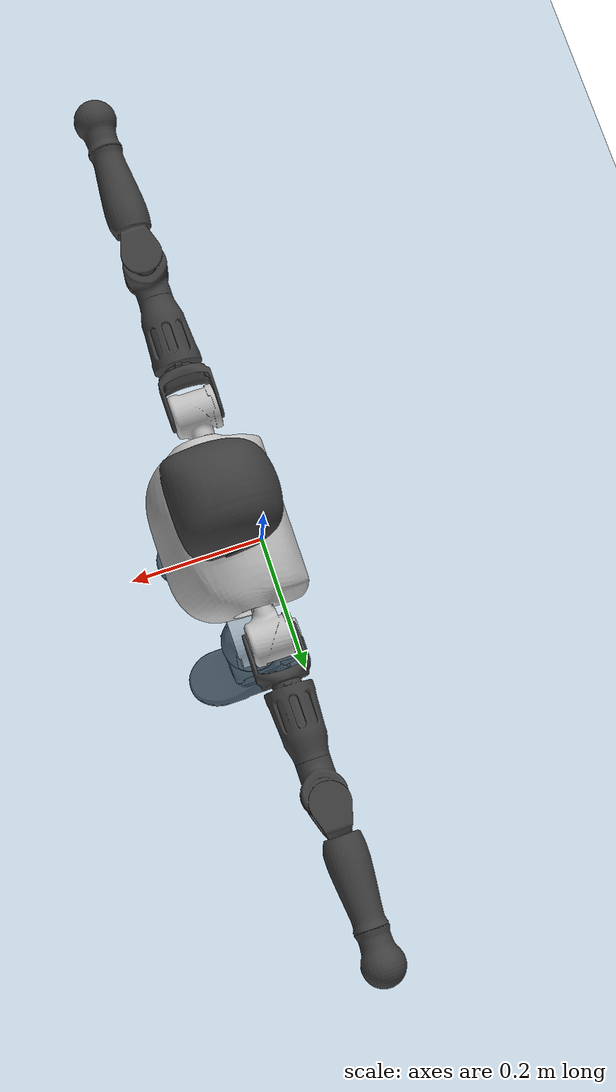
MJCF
<mujoco model="T1">
  <compiler angle="radian" assetdir="assets" balanceinertia="true" inertiafromgeom="false"/>

  <option timestep="0.005" density="1.2" viscosity="2e-05"/>

  <size nkey="1"/>

  <visual>
    <quality shadowsize="8192"/>
    <map shadowclip="0.5"/>
  </visual>

  <default>
    <default class="/">
      <joint armature="0.01" damping="0.01" frictionloss="0.1"/>
      <geom contype="0" conaffinity="0" group="1" solref="-1000 -80"/>
      <site size="0.01 0.005 0.005" group="5"/>
      <general forcelimited="true" biastype="affine" gainprm="25" biasprm="0 -25 -0.6"/>
      <default class="t1">
        <geom rgba="0.25 0.25 0.25 1"/>
        <default class="visual">
          <geom type="mesh" group="2"/>
        </default>
        <default class="collision">
          <geom group="3"/>
        </default>
        <default class="foot">
          <geom size="0.1115 0.05 0.015" type="box" condim="6" group="4" priority="1" solimp="0.015 1 0.015"/>
        </default>
        <default class="reward_collision_sphere">
          <geom group="5" rgba="1 0 0 1"/>
        </default>
      </default>
    </default>
  </default>

  <asset>
    <texture type="skybox" colorspace="auto" name="//unnamed_texture_0" builtin="gradient" rgb1="0.95 0.95 0.95" rgb2="0.95 0.95 0.95" width="100" height="600"/>
    <texture type="2d" colorspace="auto" name="texplane" builtin="checker" rgb1="0.345 0.575 0.748" rgb2="0.345 0.575 0.748" markrgb="1 1 1" width="512" height="512"/>
    <material name="MatPlane" class="/" texture="texplane" texuniform="true" texrepeat="2 2" specular="0.9"/>
    <mesh name="Trunk" class="/" file="Trunk.stl"/>
    <mesh name="H1" class="/" file="H1.stl"/>
    <mesh name="H2" class="/" file="H2.stl"/>
    <mesh name="AL1" class="/" file="AL1.stl"/>
    <mesh name="AL2" class="/" file="AL2.stl"/>
    <mesh name="AL3" class="/" file="AL3.stl"/>
    <mesh name="left_hand_link" class="/" file="left_hand_link.stl"/>
    <mesh name="AR1" class="/" file="AR1.stl"/>
    <mesh name="AR2" class="/" file="AR2.stl"/>
    <mesh name="AR3" class="/" file="AR3.stl"/>
    <mesh name="right_hand_link" class="/" file="right_hand_link.stl"/>
    <mesh name="Waist" class="/" file="Waist.stl"/>
    <mesh name="Hip_Pitch_Left" class="/" file="Hip_Pitch_Left.stl"/>
    <mesh name="Hip_Roll_Left" class="/" file="Hip_Roll_Left.stl"/>
    <mesh name="Hip_Yaw_Left" class="/" file="Hip_Yaw_Left.stl"/>
    <mesh name="Shank_Left" class="/" file="Shank_Left.stl"/>
    <mesh name="Ankle_Cross_Left" class="/" file="Ankle_Cross_Left.stl"/>
    <mesh name="left_foot_link" class="/" file="left_foot_link.stl"/>
    <mesh name="Hip_Pitch_Right" class="/" file="Hip_Pitch_Right.stl"/>
    <mesh name="Hip_Roll_Right" class="/" file="Hip_Roll_Right.stl"/>
    <mesh name="Hip_Yaw_Right" class="/" file="Hip_Yaw_Right.stl"/>
    <mesh name="Shank_Right" class="/" file="Shank_Right.stl"/>
    <mesh name="Ankle_Cross_Right" class="/" file="Ankle_Cross_Right.stl"/>
    <mesh name="right_foot_link" class="/" file="right_foot_link.stl"/>
  </asset>

  <worldbody>
    <geom name="floor" class="/" size="100 100 0.125" type="plane" group="0" material="MatPlane"/>
    <light name="toplight_shadow" class="/" pos="0 0 5" dir="0.0990148 0.0990148 -0.990148" type="directional" ambient="0.04 0.04 0.04" diffuse="0.55 0.55 0.55" specular="0.12 0.12 0.12"/>
    <light name="toplight_fill" class="/" pos="0 0 5" dir="0.0990148 0.0990148 -0.990148" type="directional" castshadow="false" ambient="0.04 0.04 0.04" diffuse="0.3 0.3 0.3" specular="0.08 0.08 0.08"/>
    <body name="trunk" childclass="t1" pos="-0.000156115 0.00255323 -0.0003421" quat="1 -9.3311e-05 1.98588e-06 0.000130793">
      <inertial pos="0.0410064 -0.000111973 0.107281" quat="0.999967 -0.00129919 -0.007874 -0.0012999" mass="10.5242" diaginertia="0.0227093 0.12214 0.0604789"/>
      <joint name="//unnamed_joint_0" type="free" armature="0" damping="0" frictionloss="0"/>
      <geom name="//unnamed_geom_1" class="visual" rgba="0.76 0.76 0.76 1" mesh="Trunk"/>
      <geom name="//unnamed_geom_2" class="collision" size="0.071985 0.09598 0.14397" pos="0.0457795 0 0.123051" type="box"/>
      <geom name="//unnamed_geom_3" class="reward_collision_sphere" size="0.110377" pos="0.0457795 0 0.102542"/>
      <geom name="//unnamed_geom_4" class="reward_collision_sphere" size="0.014397" pos="0.0457795 0.0927339 0"/>
      <geom name="//unnamed_geom_5" class="reward_collision_sphere" size="0.014397" pos="0.0457795 -0.0927339 0"/>
      <geom name="//unnamed_geom_6" class="reward_collision_sphere" size="0.014397" pos="0.0457795 0.116736 0.184576"/>
      <geom name="//unnamed_geom_7" class="reward_collision_sphere" size="0.014397" pos="0.0457795 -0.116736 0.184576"/>
      <site name="imu" pos="-0.00237465 0.00172282 0.00222301" size="0.009598"/>
      <camera name="track" pos="0 -2.18197 0" quat="0.707107 0.707107 0 0" mode="trackcom"/>
      <camera name="ego_camera" pos="0.0930849 0 0.430677" quat="-0.5 -0.5 0.5 0.5"/>
      <body name="H1" pos="0.0491279 7.00168e-08 0.250388" quat="1 -0.000244792 0.000272035 0.000252135">
        <inertial pos="0.000502832 0.000941786 0.0607002" quat="0.762605 -0.0163831 0.00398972 0.646645" mass="0.410086" diaginertia="6.54321e-05 0.000354844 0.000166951"/>
        <joint name="AAHead_yaw" pos="0 0 0" axis="0.003218 6.52139e-05 0.999995" range="-1.55458 1.53045" armature="0.00935283" damping="0" frictionloss="0.108616"/>
        <geom name="//unnamed_geom_8" class="visual" mesh="H1"/>
        <body name="H2" pos="-0.00362794 0.00174118 0.0647191" quat="1 3.66037e-06 1.17661e-05 -2.23849e-05">
          <inertial pos="0.00507166 0.00155215 0.101196" quat="0.988504 0.105906 -0.0744489 -0.0781069" mass="0.558094" diaginertia="0.00051046 0.00289421 0.00194575"/>
          <joint name="Head_pitch" pos="0 0 0" axis="0.000803345 -0.999994 0.00323961" range="-1.26625 0.357621" armature="0.0101218" damping="0.00739563" frictionloss="0.0959367"/>
          <geom name="//unnamed_geom_9" class="visual" mesh="H2"/>
          <geom name="//unnamed_geom_10" class="collision" size="0.076784" pos="0.00762991 0 0.112796"/>
          <geom name="//unnamed_geom_11" class="reward_collision_sphere" size="0.086382" pos="0.0152598 0 0.102542"/>
        </body>
      </body>
      <body name="AL1" pos="0.0446961 0.119173 0.227563" quat="1 1.79288e-06 0.00041954 -1.28717e-05">
        <inertial pos="-0.000518208 0.04611 -0.00317405" quat="0.5031 0.489498 -0.512611 0.494481" mass="0.452498" diaginertia="0.00035034 0.00191238 0.000322489"/>
        <joint name="Left_Shoulder_Pitch" pos="0 0 0" axis="0.00183078 0.999989 -0.00442013" range="-3.31715 1.22554" armature="0.00929131" damping="0.0232083" frictionloss="0.0828535"/>
        <geom name="//unnamed_geom_12" class="visual" rgba="0.76 0.76 0.76 1" mesh="AL1"/>
        <body name="AL2" pos="0.00120395 0.0502824 -9.18036e-05" quat="1 -3.19092e-06 -0.000154938 -0.000188857">
          <inertial pos="0.000494804 0.0424677 -0.0011924" quat="0.496379 0.512791 -0.47713 0.512835" mass="0.143649" diaginertia="0.000100399 0.000512115 0.000203189"/>
          <joint name="Left_Shoulder_Roll" pos="0 0 0" axis="-1 -0.000307404 9.29016e-05" range="-1.58204 1.70795" armature="0.00986213" damping="0.00425816" frictionloss="0.0941309"/>
          <geom name="//unnamed_geom_13" class="visual" mesh="AL2"/>
          <body name="AL3" pos="0.000183962 0.0636324 -0.000432137" quat="1 6.13837e-06 -1.25869e-05 5.169e-05">
            <inertial pos="-0.0015656 0.0931343 0.000971563" quat="0.706252 0.707957 0.00112072 -0.00188967" mass="0.907371" diaginertia="0.00342521 0.0198231 0.000675624"/>
            <joint name="Left_Elbow_Pitch" pos="0 0 0" axis="-0.000504221 -0.999991 -0.00415084" range="-2.25602 2.25496" armature="0.00868196" damping="0.0178832" frictionloss="0.109133"/>
            <geom name="//unnamed_geom_14" class="visual" mesh="AL3"/>
            <geom name="//unnamed_geom_15" class="collision" size="0.028794 0.071985" pos="0 0.0545493 0" quat="0.707105 0.707108 0 0" type="cylinder"/>
            <geom name="//unnamed_geom_16" class="reward_collision_sphere" size="0.0345528"/>
            <body name="left_hand_link" pos="-0.00226154 0.160376 -0.000324506" quat="0.999999 0.000554143 0.0011542 5.24354e-05">
              <inertial pos="0.000119729 0.122341 0.00289955" quat="0.710793 0.703395 0.00067158 -0.00301063" mass="0.278594" diaginertia="0.00210333 0.0129183 0.000243585"/>
              <joint name="Left_Elbow_Yaw" pos="0 0 0" axis="-0.00308304 0.00537069 0.999981" range="-2.40077 -0.0221411" armature="0.00993302" damping="0.00774182" frictionloss="0.108421"/>
              <geom name="//unnamed_geom_17" class="visual" mesh="left_hand_link"/>
              <geom name="//unnamed_geom_18" class="collision" size="0.028794 0.0839825" pos="0 0.141828 0" quat="0.707105 0.707108 0 0" type="cylinder"/>
              <geom name="//unnamed_geom_19" class="reward_collision_sphere" size="0.04799"/>
              <geom name="//unnamed_geom_20" class="reward_collision_sphere" size="0.033593" pos="0 0.120009 0"/>
              <geom name="//unnamed_geom_21" class="reward_collision_sphere" size="0.033593" pos="0 0.234562 0"/>
            </body>
          </body>
        </body>
      </body>
      <body name="AR1" pos="0.0459594 -0.115132 0.226346" quat="1 -0.000122031 0.000234711 0.000213497">
        <inertial pos="-0.00276391 -0.0521247 0.00157001" quat="0.495329 0.504736 -0.50844 0.491303" mass="0.459457" diaginertia="0.000334999 0.00193238 0.000323799"/>
        <joint name="Right_Shoulder_Pitch" pos="0 0 0" axis="-0.0153482 -0.999862 -0.00628964" range="-1.22782 3.3602" armature="0.00908231" damping="0" frictionloss="0.094874"/>
        <geom name="//unnamed_geom_22" class="visual" rgba="0.76 0.76 0.76 1" mesh="AR1"/>
        <body name="AR2" pos="-0.000360263 -0.0478807 0.00401015" quat="0.999999 0.00104239 0.000815601 -0.000337403">
          <inertial pos="1.93764e-05 -0.0409654 0.00271302" quat="0.513211 0.484132 -0.514226 0.487651" mass="0.139546" diaginertia="0.000103454 0.000531407 0.000197621"/>
          <joint name="Right_Shoulder_Roll" pos="0 0 0" axis="-0.999931 0.000349044 -0.0117297" range="-1.69767 1.57242" armature="0.00960437" damping="0.0212114" frictionloss="0.101812"/>
          <geom name="//unnamed_geom_23" class="visual" mesh="AR2"/>
          <body name="AR3" pos="0.00208351 -0.0642509 -0.00263449" quat="1 -0.000740843 -0.000228405 0.000621735">
            <inertial pos="-9.72244e-05 -0.0941887 0.00171154" quat="0.701885 0.712247 0.0071051 0.00337462" mass="0.907498" diaginertia="0.00323098 0.0194077 0.000707054"/>
            <joint name="Right_Elbow_Pitch" pos="0 0 0" axis="-0.0102297 0.999901 0.0096409" range="-2.28635 2.2083" armature="0.00857799" damping="0.0141652" frictionloss="0.0975005"/>
            <geom name="//unnamed_geom_24" class="visual" mesh="AR3"/>
            <geom name="//unnamed_geom_25" class="collision" size="0.028794 0.071985" pos="0 -0.0545493 0" quat="0.707105 0.707108 0 0" type="cylinder"/>
            <geom name="//unnamed_geom_26" class="reward_collision_sphere" size="0.0345528"/>
            <body name="right_hand_link" pos="1.67698e-06 -0.159857 5.35687e-05" quat="1 1.59666e-05 1.43709e-05 -2.3185e-05">
              <inertial pos="-0.00224816 -0.117375 -0.00134036" quat="0.710081 0.704056 0.000271706 -0.00943479" mass="0.280048" diaginertia="0.00210077 0.0117179 0.000243426"/>
              <joint name="Right_Elbow_Yaw" pos="0 0 0" axis="0.00649578 -0.00277037 0.999975" range="0.00767888 2.43255" armature="0.008494" damping="0" frictionloss="0.0921286"/>
              <geom name="//unnamed_geom_27" class="visual" mesh="right_hand_link"/>
              <geom name="//unnamed_geom_28" class="collision" size="0.028794 0.0839825" pos="0 -0.141828 0" quat="0.707105 0.707108 0 0" type="cylinder"/>
              <geom name="//unnamed_geom_29" class="reward_collision_sphere" size="0.04799"/>
              <geom name="//unnamed_geom_30" class="reward_collision_sphere" size="0.033593" pos="0 -0.120009 0"/>
              <geom name="//unnamed_geom_31" class="reward_collision_sphere" size="0.033593" pos="0 -0.234562 0"/>
            </body>
          </body>
        </body>
      </body>
      <body name="Waist" pos="0.0476633 -0.00229919 -0.116333" quat="1 -0.000512342 -0.000209825 -5.68541e-05">
        <inertial pos="0.00519195 -0.00173301 0.0104342" quat="0.983851 -0.00397387 -0.178909 0.00371596" mass="2.31746" diaginertia="0.00136277 0.00839316 0.00527625"/>
        <joint name="Waist" pos="0 0 0" axis="0.00733962 0.00513615 0.99996" range="-1.61291 1.62749" armature="0.00922187" damping="0.00476243" frictionloss="0.0942201"/>
        <geom name="//unnamed_geom_32" class="visual" mesh="Waist"/>
        <body name="Hip_Pitch_Left" pos="0.0011422 0.115232 0.000981524" quat="1 5.16673e-05 -5.22914e-06 -0.000104876">
          <inertial pos="-0.00155224 -0.008834 -0.0183935" quat="0.976412 0.215697 0.00868934 0.00440828" mass="0.914034" diaginertia="0.000483831 0.00223739 0.00144045"/>
          <joint name="Left_Hip_Pitch" pos="0 0 0" axis="0.00921999 0.999942 0.00554334" range="-1.76719 1.55606" armature="0.00952692" damping="0" frictionloss="0.0889815"/>
          <geom name="//unnamed_geom_33" class="visual" rgba="0.76 0.76 0.76 1" mesh="Hip_Pitch_Left"/>
          <body name="Hip_Roll_Left" pos="0.00364023 0.000561547 -0.0206623" quat="1 0.000226424 -7.97455e-05 0.000190317">
            <inertial pos="0.00231661 -0.00102378 -0.0557666" quat="0.69927 -0.000673206 0.000671408 0.714858" mass="0.352327" diaginertia="0.000456963 0.00249252 0.000592619"/>
            <joint name="Left_Hip_Roll" pos="0 0 0" axis="-0.999956 0.00765319 -0.00544383" range="-1.52232 0.198068" armature="0.00941523" damping="0.0209485" frictionloss="0.0849984"/>
            <geom name="//unnamed_geom_34" class="visual" mesh="Hip_Roll_Left"/>
            <geom name="//unnamed_geom_35" class="reward_collision_sphere" size="0.052789"/>
            <body name="Hip_Yaw_Left" pos="-0.000891905 0.000509681 -0.0848833" quat="1 -1.2659e-05 -1.00968e-05 -8.63579e-05">
              <inertial pos="-0.0034181 -0.00136564 -0.0922909" quat="0.699863 -0.0453404 -0.0314373 0.712143" mass="1.83986" diaginertia="0.00652123 0.0398261 0.0029038"/>
              <joint name="Left_Hip_Yaw" pos="0 0 0" axis="0.00832099 0.000573749 -0.999965" stiffness="0.00128678" range="-0.987478 1.04861" armature="0.00847817" damping="0" frictionloss="0.0906664"/>
              <geom name="//unnamed_geom_36" class="visual" mesh="Hip_Yaw_Left"/>
              <geom name="//unnamed_geom_37" class="collision" size="0.04799 0.076784" type="cylinder"/>
              <body name="Shank_Left" pos="-0.0119604 0.000723483 -0.136707" quat="1 -2.72191e-05 -3.36354e-06 1.21563e-05">
                <inertial pos="-0.00159142 0.00109744 -0.130429" quat="0.997679 0.00174837 -0.0188083 0.0654251" mass="1.5979" diaginertia="0.00948503 0.0557771 0.00215413"/>
                <joint name="Left_Knee_Pitch" pos="0 0 0" axis="0.00365145 0.999812 0.019063" range="-0.0397644 2.3355" armature="0.0107097" damping="0" frictionloss="0.0922905"/>
                <geom name="//unnamed_geom_38" class="visual" mesh="Shank_Left"/>
                <geom name="//unnamed_geom_39" class="collision" size="0.04799 0.071985" pos="0 0 -0.123051" type="cylinder"/>
                <geom name="//unnamed_geom_40" class="reward_collision_sphere" size="0.062387"/>
                <body name="Ankle_Cross_Left" pos="-0.000194787 -0.00281821 -0.28681" quat="1 0.000217171 0.000197511 0.000177731">
                  <inertial pos="-0.00302808 0.000652684 -0.00914106" quat="0.442993 0.551048 0.5512 0.443037" mass="0.0683123" diaginertia="7.51759e-06 4.08825e-05 1.32619e-05"/>
                  <joint name="Left_Ankle_Pitch" pos="0 0 0" axis="-0.0100366 0.999949 0.00082761" range="-0.86219 0.325121" armature="0.00943112" damping="0.00855168" frictionloss="0.0992341"/>
                  <geom name="//unnamed_geom_41" class="visual" mesh="Ankle_Cross_Left"/>
                  <body name="left_foot_link" pos="0.00148859 -0.00130523 -0.011628" quat="0.999999 0.000204296 0.000726185 0.000893867">
                    <inertial pos="-0.000642063 5.21629e-05 -0.00987463" quat="-0.000100897 0.620657 -3.84601e-05 0.784082" mass="0.568" diaginertia="0.000657349 0.00360691 0.00231882"/>
                    <joint name="Left_Ankle_Roll" pos="0 0 0" axis="-0.999864 -0.016472 -0.00107639" stiffness="0.00735638" range="-0.490842 0.495923" armature="0.00966978" damping="0.00777097" frictionloss="0.0952501"/>
                    <geom name="//unnamed_geom_42" class="visual" mesh="left_foot_link"/>
                    <geom name="left_foot" class="foot" size="0.109288 0.0483811 0.0159931" pos="0.00762991 0 -0.0153813"/>
                    <geom name="//unnamed_geom_44" class="reward_collision_sphere" size="0.0499096" pos="0.00762991 0 -0.0153813"/>
                    <geom name="//unnamed_geom_45" class="reward_collision_sphere" size="0.028794" pos="0.0724842 -0.0250927 -0.0153813"/>
                    <geom name="//unnamed_geom_46" class="reward_collision_sphere" size="0.028794" pos="-0.0534094 -0.0250927 -0.0153813"/>
                    <site name="left_foot" class="foot" pos="0.00762991 0 -0.0153813" size="0.009598"/>
                  </body>
                </body>
              </body>
            </body>
          </body>
        </body>
        <body name="Hip_Pitch_Right" pos="-0.00267477 -0.113423 0.0011027" quat="1 -6.12261e-05 7.50053e-05 0.000151672">
          <inertial pos="0.00157058 0.00844956 -0.0165345" quat="0.976086 -0.217174 0.00753805 -0.00593304" mass="0.925842" diaginertia="0.000477637 0.00231022 0.00150061"/>
          <joint name="Right_Hip_Pitch" pos="0 0 0" axis="0.00195602 -0.999985 0.00511756" range="-1.51822 1.77345" armature="0.00993766" damping="0.0223091" frictionloss="0.0963085"/>
          <geom name="//unnamed_geom_47" class="visual" rgba="0.76 0.76 0.76 1" mesh="Hip_Pitch_Right"/>
          <body name="Hip_Roll_Right" pos="-0.00117567 0.00105923 -0.0184742" quat="1 0.00027943 0.000101572 -3.45197e-05">
            <inertial pos="-0.000932131 0.000384341 -0.0521078" quat="0.707557 -0.00540522 -0.00500872 0.706618" mass="0.340998" diaginertia="0.000455763 0.00242043 0.000600837"/>
            <joint name="Right_Hip_Roll" pos="0 0 0" axis="-0.999825 0.0164677 -0.00885311" range="-0.15006 1.51565" armature="0.0100956" damping="0" frictionloss="0.103845"/>
            <geom name="//unnamed_geom_48" class="visual" mesh="Hip_Roll_Right"/>
            <geom name="//unnamed_geom_49" class="reward_collision_sphere" size="0.052789"/>
            <body name="Hip_Yaw_Right" pos="0.00145445 0.000896507 -0.0827532" quat="1 -9.77052e-05 0.000194726 -3.8582e-05">
              <inertial pos="-0.00652558 -0.000697278 -0.0905983" quat="0.71224 -0.0296066 -0.0369976 0.700335" mass="1.86895" diaginertia="0.00678203 0.0405262 0.0028597"/>
              <joint name="Right_Hip_Yaw" pos="0 0 0" axis="0.00530836 -0.016991 -0.999842" range="-0.989188 0.997434" armature="0.00956867" damping="0.0146798" frictionloss="0.0959133"/>
              <geom name="//unnamed_geom_50" class="visual" mesh="Hip_Yaw_Right"/>
              <geom name="//unnamed_geom_51" class="collision" size="0.04799 0.076784" type="cylinder"/>
              <body name="Shank_Right" pos="-0.0113845 0.000661067 -0.137648" quat="1 0.000135051 -1.96492e-05 -0.000227855">
                <inertial pos="-0.00363305 0.00243763 -0.128394" quat="0.999254 -0.000654061 -0.0236516 -0.0305137" mass="1.62873" diaginertia="0.00893867 0.0554054 0.00220035"/>
                <joint name="Right_Knee_Pitch" pos="0 0 0" axis="0.0118474 -0.999921 -0.00418204" stiffness="0.00856726" range="-2.35576 -0.0219256" armature="0.00917537" damping="0.00841678" frictionloss="0.0846203"/>
                <geom name="//unnamed_geom_52" class="visual" mesh="Shank_Right"/>
                <geom name="//unnamed_geom_53" class="collision" size="0.04799 0.071985" pos="0 0 -0.123051" type="cylinder"/>
                <geom name="//unnamed_geom_54" class="reward_collision_sphere" size="0.062387"/>
                <body name="Ankle_Cross_Right" pos="-0.00242928 -0.00324612 -0.288542" quat="0.999999 0.000195841 -0.000231594 -0.00119226">
                  <inertial pos="-0.00152661 -0.00251253 -0.00738102" quat="0.436344 0.545292 0.561683 0.443591" mass="0.0607648" diaginertia="7.29136e-06 3.85688e-05 1.2563e-05"/>
                  <joint name="Right_Ankle_Pitch" pos="0 0 0" axis="-0.00109098 -0.999994 0.00338901" range="-0.369721 0.920625" armature="0.00929752" damping="0.0167408" frictionloss="0.0973271"/>
                  <geom name="//unnamed_geom_55" class="visual" mesh="Ankle_Cross_Right"/>
                  <body name="right_foot_link" pos="-0.00156305 -0.00241719 -0.0104307" quat="1 0.000490962 7.22423e-05 -0.000213146">
                    <inertial pos="-0.000494893 -0.00267056 -0.00957536" quat="0.000294116 0.622633 -0.00103501 0.782513" mass="0.599249" diaginertia="0.000701739 0.00356618 0.00241506"/>
                    <joint name="Right_Ankle_Roll" pos="0 0 0" axis="-1 0.000318516 0.000521036" range="-0.479095 0.419109" armature="0.00964864" damping="0" frictionloss="0.0916155"/>
                    <geom name="//unnamed_geom_56" class="visual" mesh="right_foot_link"/>
                    <geom name="right_foot" class="foot" size="0.100663 0.0475547 0.014084" pos="0.00762991 0 -0.0153813"/>
                    <geom name="//unnamed_geom_58" class="reward_collision_sphere" size="0.038392"/>
                    <geom name="//unnamed_geom_59" class="reward_collision_sphere" size="0.028794" pos="0.00762991 0 -0.0153813"/>
                    <geom name="//unnamed_geom_60" class="reward_collision_sphere" size="0.028794" pos="0.0724842 0.0250927 -0.0153813"/>
                    <geom name="//unnamed_geom_61" class="reward_collision_sphere" size="0.028794" pos="-0.0534094 0.0250927 -0.0153813"/>
                    <site name="right_foot" class="foot" pos="0.00762991 0 -0.0153813" size="0.009598"/>
                  </body>
                </body>
              </body>
            </body>
          </body>
        </body>
      </body>
    </body>
  </worldbody>

  <contact>
    <pair class="/" geom1="floor" geom2="left_foot" name="//unnamed_contact_0"/>
    <pair class="/" geom1="floor" geom2="right_foot" name="//unnamed_contact_1"/>
  </contact>

  <actuator>
    <general name="AAHead_yaw" class="/" joint="AAHead_yaw" forcerange="-6.67314 6.67314" gainprm="25.1535" biasprm="0 -25.1535 -0.554089"/>
    <general name="Head_pitch" class="/" joint="Head_pitch" forcerange="-7.424 7.424" gainprm="25.1535" biasprm="0 -25.1535 -0.554089"/>
    <general name="Left_Shoulder_Pitch" class="/" joint="Left_Shoulder_Pitch" forcerange="-15.3725 15.3725" gainprm="25.1535" biasprm="0 -25.1535 -0.554089"/>
    <general name="Left_Shoulder_Roll" class="/" joint="Left_Shoulder_Roll" forcerange="-18.3343 18.3343" gainprm="25.1535" biasprm="0 -25.1535 -0.554089"/>
    <general name="Left_Elbow_Pitch" class="/" joint="Left_Elbow_Pitch" forcerange="-16.5007 16.5007" gainprm="25.1535" biasprm="0 -25.1535 -0.554089"/>
    <general name="Left_Elbow_Yaw" class="/" joint="Left_Elbow_Yaw" forcerange="-17.4732 17.4732" gainprm="25.1535" biasprm="0 -25.1535 -0.554089"/>
    <general name="Right_Shoulder_Pitch" class="/" joint="Right_Shoulder_Pitch" forcerange="-18.3912 18.3912" gainprm="25.1535" biasprm="0 -25.1535 -0.554089"/>
    <general name="Right_Shoulder_Roll" class="/" joint="Right_Shoulder_Roll" forcerange="-19.029 19.029" gainprm="25.1535" biasprm="0 -25.1535 -0.554089"/>
    <general name="Right_Elbow_Pitch" class="/" joint="Right_Elbow_Pitch" forcerange="-17.3949 17.3949" gainprm="25.1535" biasprm="0 -25.1535 -0.554089"/>
    <general name="Right_Elbow_Yaw" class="/" joint="Right_Elbow_Yaw" forcerange="-16.5036 16.5036" gainprm="25.1535" biasprm="0 -25.1535 -0.554089"/>
    <general name="Waist" class="/" joint="Waist" forcerange="-29.5588 29.5588" gainprm="25.1535" biasprm="0 -25.1535 -0.554089"/>
    <general name="Left_Hip_Pitch" class="/" joint="Left_Hip_Pitch" forcerange="-43.3276 43.3276" gainprm="25.1535" biasprm="0 -25.1535 -0.554089"/>
    <general name="Left_Hip_Roll" class="/" joint="Left_Hip_Roll" forcerange="-28.8592 28.8592" gainprm="25.1535" biasprm="0 -25.1535 -0.554089"/>
    <general name="Left_Hip_Yaw" class="/" joint="Left_Hip_Yaw" forcerange="-26.0251 26.0251" gainprm="25.1535" biasprm="0 -25.1535 -0.554089"/>
    <general name="Left_Knee_Pitch" class="/" joint="Left_Knee_Pitch" forcerange="-58.2316 58.2316" gainprm="25.1535" biasprm="0 -25.1535 -0.554089"/>
    <general name="Left_Ankle_Pitch" class="/" joint="Left_Ankle_Pitch" forcerange="-17.2631 17.2631" gainprm="25.1535" biasprm="0 -25.1535 -0.554089"/>
    <general name="Left_Ankle_Roll" class="/" joint="Left_Ankle_Roll" forcerange="-12.9016 12.9016" gainprm="25.1535" biasprm="0 -25.1535 -0.554089"/>
    <general name="Right_Hip_Pitch" class="/" joint="Right_Hip_Pitch" forcerange="-41.4416 41.4416" gainprm="25.1535" biasprm="0 -25.1535 -0.554089"/>
    <general name="Right_Hip_Roll" class="/" joint="Right_Hip_Roll" forcerange="-28.7229 28.7229" gainprm="25.1535" biasprm="0 -25.1535 -0.554089"/>
    <general name="Right_Hip_Yaw" class="/" joint="Right_Hip_Yaw" forcerange="-31.664 31.664" gainprm="25.1535" biasprm="0 -25.1535 -0.554089"/>
    <general name="Right_Knee_Pitch" class="/" joint="Right_Knee_Pitch" forcerange="-58.302 58.302" gainprm="25.1535" biasprm="0 -25.1535 -0.554089"/>
    <general name="Right_Ankle_Pitch" class="/" joint="Right_Ankle_Pitch" forcerange="-19.6205 19.6205" gainprm="25.1535" biasprm="0 -25.1535 -0.554089"/>
    <general name="Right_Ankle_Roll" class="/" joint="Right_Ankle_Roll" forcerange="-14.8505 14.8505" gainprm="25.1535" biasprm="0 -25.1535 -0.554089"/>
  </actuator>

  <sensor>
    <gyro site="imu" name="imu_angular_velocity"/>
    <velocimeter site="imu" name="imu_linear_velocity"/>
    <framelinvel objtype="site" objname="left_foot" name="left_foot_global_linear_velocity"/>
    <framelinvel objtype="site" objname="right_foot" name="right_foot_global_linear_velocity"/>
  </sensor>

  <keyframe>
    <key name="home" qpos="0 0 0.6385 1 0 0 0 0 0 0 1.4 0 -0.4 0 -1.4 0 0.4 0 -0.4 0 0 0.8 -0.4 0 0.4 0 0 -0.8 0.4 0"/>
  </keyframe>
</mujoco>
